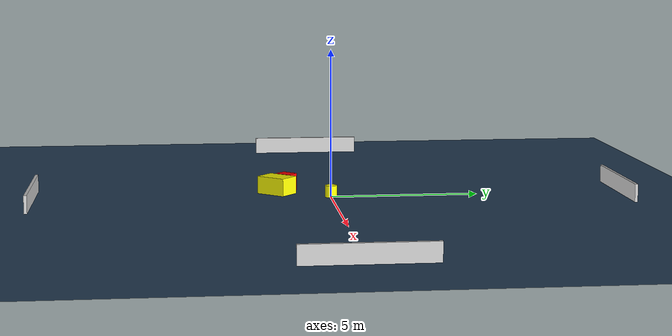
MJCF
<?xml version="1.0" ?>
<mujoco model="generated_environment">
  <option timestep="0.01" integrator="RK4" cone="elliptic"/>
  <default>
    <geom density="1"/>
  </default>
  <asset>
    <texture builtin="gradient" height="3072" name="skybox" rgb1="0.3 0.5 0.7" rgb2="0 0 0" type="skybox" width="512"/>
    <texture builtin="checker" height="300" name="groundplane" rgb1="0.2 0.3 0.4" rgb2="0.1 0.2 0.3" type="2d" width="300"/>
    <material name="groundplane" reflectance="0.2" texrepeat="5 5" texture="groundplane"/>
  </asset>
  <worldbody>
    <light dir="0 0 -1" directional="true" pos="0 0 1.5"/>
    <geom condim="3" friction="0.5 0.005 0.001" material="groundplane" name="floor" pos="0 0 0" size="0 0 0.05" type="plane"/>
    <body name="walls">
      <geom name="wall_1" condim="4" pos="-10.0 0.0 0.3" rgba="0.800000011920929 0.800000011920929 0.800000011920929 1.0" size="0.05 2.0 0.3" type="box"/>
      <geom name="wall_2" condim="4" pos="10.0 0.0 0.3" rgba="0.800000011920929 0.800000011920929 0.800000011920929 1.0" size="0.05 2.0 0.3" type="box"/>
      <geom name="wall_3" condim="4" pos="0.0 -10.0 0.3" rgba="0.800000011920929 0.800000011920929 0.800000011920929 1.0" size="2.0 0.05 0.3" type="box"/>
      <geom name="wall_4" condim="4" pos="0.0 10.0 0.3" rgba="0.800000011920929 0.800000011920929 0.800000011920929 1.0" size="2.0 0.05 0.3" type="box"/>
    </body>
    <body name="robot">
      <joint name="joint_x" type="slide" pos="0 0 0" axis="1 0 0"/>
      <joint name="joint_y" type="slide" pos="0 0 0" axis="0 1 0"/>
      <geom name="robot" type="cylinder" pos="0.0 0.0 0.2" size="0.2 0.2 0.0" mass="5.0" friction="1.0 0.005 0.0001" condim="4" rgba="1.0 1.0 0.0 1.0"/>
    </body>
    <body name="obstacle_1_movable">
      <geom name="obstacle_1_movable" condim="4" pos="-0.8515894606223203 -1.7819042623000052 0.3" euler="0 0 228.85492487208222" friction="0.0 0.005 0.001" rgba="1.0 1.0 0.0 1.0" size="0.541505031565704 0.37462722129883796 0.3" type="box" mass="0.1"/>
      <joint type="free"/>
    </body>
    <body name="obstacle_2_static">
      <geom name="obstacle_2_static" condim="4" pos="-1.3930177717897765 -1.4228213311032174 0.3" euler="0 0 316.94527223150914" friction="0.0 0.005 0.001" rgba="1.0 0.0 0.0 1.0" size="0.23202396055827082 0.28261784080245445 0.3" type="box"/>
    </body>
  </worldbody>
  <actuator>
    <motor name="actuator_x" joint="joint_x" gear="1" ctrlrange="-1 1"/>
    <motor name="actuator_y" joint="joint_y" gear="1" ctrlrange="-1 1"/>
  </actuator>
</mujoco>
